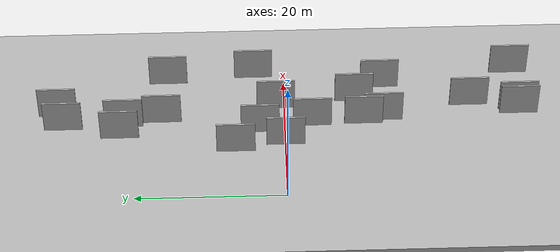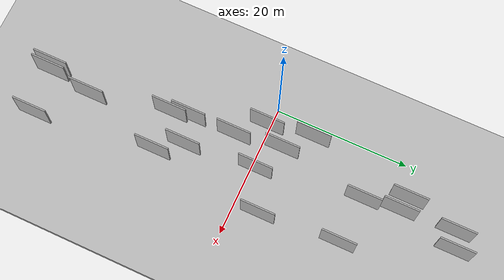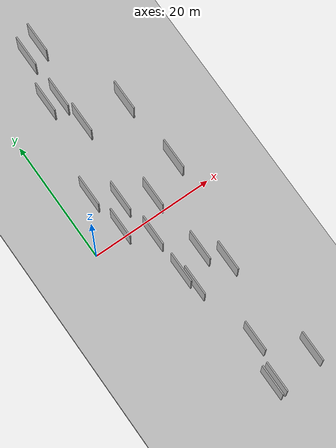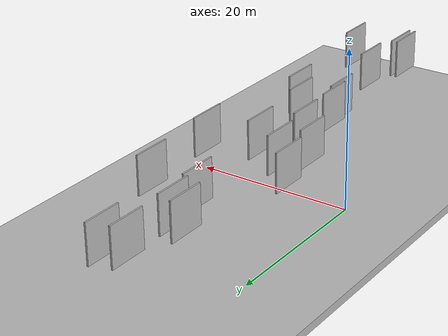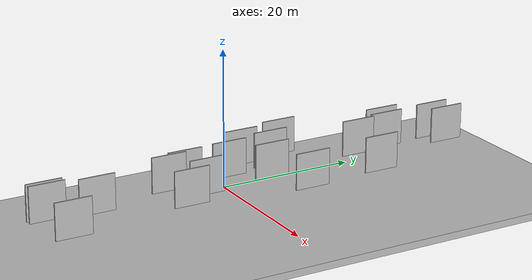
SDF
<?xml version="1.0" encoding="utf-8"?>

<sdf version="1.6">

   <world name="default">

      <gui fullscreen="0">

         <camera name="user_camera">

            <pose>-15 0 4.57585 0 0 0</pose>

            <view_controller>orbit</view_controller>

         </camera>

      </gui>

      <scene>

         <sky>

           <clouds>

             <speed>12</speed>

           </clouds>

         </sky>

         <ambient>0.4 0.4 0.4 1</ambient>

         <background>0.7 0.7 0.7 1</background>

         <shadows>1</shadows>

      </scene>

      <gravity>0 0 -9.8066</gravity>

      <magnetic_field>6e-06 2.3e-05 -4.2e-05</magnetic_field>

      <physics default="0" name="default_physics" type="ode">

         <ode>

            <solver>

               <type>quick</type>

               <iters>10</iters>

               <sor>1.0</sor>

               <use_dynamic_moi_rescaling>0</use_dynamic_moi_rescaling>

            </solver>

            <constraints>

               <cfm>0</cfm>

               <erp>0.2</erp>

               <contact_max_correcting_vel>100</contact_max_correcting_vel>

               <contact_surface_layer>0.001</contact_surface_layer>

            </constraints>

         </ode>

         <max_step_size>0.004</max_step_size>

         <real_time_factor>1</real_time_factor>

         <real_time_update_rate>250</real_time_update_rate>

      </physics>

      <light name="sun" type="directional">

         <cast_shadows>1</cast_shadows>

         <pose>0 0 10 0 0 0</pose>

         <diffuse>0.8 0.8 0.8 1</diffuse>

         <specular>0.2 0.2 0.2 1</specular>

         <attenuation>

            <range>1000</range>

            <constant>0.9</constant>

            <linear>0.01</linear>

            <quadratic>0.001</quadratic>

         </attenuation>

         <direction>-0.5 0.1 -0.9</direction>

      </light>

      <include>

         <name>ground_plane_1</name>

         <uri>model://HANNAS_ground_plane</uri>

         <pose>0 0 0  0 0 0</pose>

      </include>

      <include>

         <name>ground_plane_2</name>

         <uri>model://HANNAS_ground_plane</uri>

         <pose>100 0 0  0 0 0</pose>

      </include>

      <model name="HANNAS_wall_1">

         <static>1</static>

         <pose frame="">8.9552 16.1718 5.0 0.000000 0.000000 1.570796</pose>

         <link name="link">

            <pose frame="">0 0 2.50 0 0 0</pose>

            <collision name="collision">

               <geometry>

                  <box>

                     <size>5.00 0.2 5.00</size>

                  </box>

               </geometry>

               <max_contacts>10</max_contacts>

               <surface>

                  <contact>

                     <ode/>

                  </contact>

                  <bounce/>

                  <friction>

                     <torsional>

                        <ode/>

                     </torsional>

                     <ode/>

                  </friction>

               </surface>

            </collision>

            <visual name="visual">

               <cast_shadows>0</cast_shadows>

               <geometry>

                  <box>

                     <size>5.00 0.2 5.00</size>

                  </box>

               </geometry>

               <material>

                  <script>

                     <uri>model://HANNAS_wall/materials/scripts</uri>

                     <uri>model://HANNAS_wall/materials/textures</uri>

                     <name>vrc/HANNAS_wall</name>

                  </script>

               </material>

            </visual>

            <self_collide>0</self_collide>

            <enable_wind>0</enable_wind>

            <kinematic>0</kinematic>

         </link>

      </model>

      <model name="HANNAS_wall_2">

         <static>1</static>

         <pose frame="">16.6825 4.1266 5.0 0.000000 0.000000 1.570796</pose>

         <link name="link">

            <pose frame="">0 0 2.50 0 0 0</pose>

            <collision name="collision">

               <geometry>

                  <box>

                     <size>5.00 0.2 5.00</size>

                  </box>

               </geometry>

               <max_contacts>10</max_contacts>

               <surface>

                  <contact>

                     <ode/>

                  </contact>

                  <bounce/>

                  <friction>

                     <torsional>

                        <ode/>

                     </torsional>

                     <ode/>

                  </friction>

               </surface>

            </collision>

            <visual name="visual">

               <cast_shadows>0</cast_shadows>

               <geometry>

                  <box>

                     <size>5.00 0.2 5.00</size>

                  </box>

               </geometry>

               <material>

                  <script>

                     <uri>model://HANNAS_wall/materials/scripts</uri>

                     <uri>model://HANNAS_wall/materials/textures</uri>

                     <name>vrc/HANNAS_wall</name>

                  </script>

               </material>

            </visual>

            <self_collide>0</self_collide>

            <enable_wind>0</enable_wind>

            <kinematic>0</kinematic>

         </link>

      </model>

      <model name="HANNAS_wall_3">

         <static>1</static>

         <pose frame="">3.6133 6.5719 5.0 0.000000 0.000000 1.570796</pose>

         <link name="link">

            <pose frame="">0 0 2.50 0 0 0</pose>

            <collision name="collision">

               <geometry>

                  <box>

                     <size>5.00 0.2 5.00</size>

                  </box>

               </geometry>

               <max_contacts>10</max_contacts>

               <surface>

                  <contact>

                     <ode/>

                  </contact>

                  <bounce/>

                  <friction>

                     <torsional>

                        <ode/>

                     </torsional>

                     <ode/>

                  </friction>

               </surface>

            </collision>

            <visual name="visual">

               <cast_shadows>0</cast_shadows>

               <geometry>

                  <box>

                     <size>5.00 0.2 5.00</size>

                  </box>

               </geometry>

               <material>

                  <script>

                     <uri>model://HANNAS_wall/materials/scripts</uri>

                     <uri>model://HANNAS_wall/materials/textures</uri>

                     <name>vrc/HANNAS_wall</name>

                  </script>

               </material>

            </visual>

            <self_collide>0</self_collide>

            <enable_wind>0</enable_wind>

            <kinematic>0</kinematic>

         </link>

      </model>

      <model name="HANNAS_wall_4">

         <static>1</static>

         <pose frame="">6.8973 3.3755 5.0 0.000000 0.000000 1.570796</pose>

         <link name="link">

            <pose frame="">0 0 2.50 0 0 0</pose>

            <collision name="collision">

               <geometry>

                  <box>

                     <size>5.00 0.2 5.00</size>

                  </box>

               </geometry>

               <max_contacts>10</max_contacts>

               <surface>

                  <contact>

                     <ode/>

                  </contact>

                  <bounce/>

                  <friction>

                     <torsional>

                        <ode/>

                     </torsional>

                     <ode/>

                  </friction>

               </surface>

            </collision>

            <visual name="visual">

               <cast_shadows>0</cast_shadows>

               <geometry>

                  <box>

                     <size>5.00 0.2 5.00</size>

                  </box>

               </geometry>

               <material>

                  <script>

                     <uri>model://HANNAS_wall/materials/scripts</uri>

                     <uri>model://HANNAS_wall/materials/textures</uri>

                     <name>vrc/HANNAS_wall</name>

                  </script>

               </material>

            </visual>

            <self_collide>0</self_collide>

            <enable_wind>0</enable_wind>

            <kinematic>0</kinematic>

         </link>

      </model>

      <model name="HANNAS_wall_5">

         <static>1</static>

         <pose frame="">9.2065 -30.6236 5.0 0.000000 0.000000 1.570796</pose>

         <link name="link">

            <pose frame="">0 0 2.50 0 0 0</pose>

            <collision name="collision">

               <geometry>

                  <box>

                     <size>5.00 0.2 5.00</size>

                  </box>

               </geometry>

               <max_contacts>10</max_contacts>

               <surface>

                  <contact>

                     <ode/>

                  </contact>

                  <bounce/>

                  <friction>

                     <torsional>

                        <ode/>

                     </torsional>

                     <ode/>

                  </friction>

               </surface>

            </collision>

            <visual name="visual">

               <cast_shadows>0</cast_shadows>

               <geometry>

                  <box>

                     <size>5.00 0.2 5.00</size>

                  </box>

               </geometry>

               <material>

                  <script>

                     <uri>model://HANNAS_wall/materials/scripts</uri>

                     <uri>model://HANNAS_wall/materials/textures</uri>

                     <name>vrc/HANNAS_wall</name>

                  </script>

               </material>

            </visual>

            <self_collide>0</self_collide>

            <enable_wind>0</enable_wind>

            <kinematic>0</kinematic>

         </link>

      </model>

      <model name="HANNAS_wall_6">

         <static>1</static>

         <pose frame="">8.3192 21.1866 5.0 0.000000 0.000000 1.570796</pose>

         <link name="link">

            <pose frame="">0 0 2.50 0 0 0</pose>

            <collision name="collision">

               <geometry>

                  <box>

                     <size>5.00 0.2 5.00</size>

                  </box>

               </geometry>

               <max_contacts>10</max_contacts>

               <surface>

                  <contact>

                     <ode/>

                  </contact>

                  <bounce/>

                  <friction>

                     <torsional>

                        <ode/>

                     </torsional>

                     <ode/>

                  </friction>

               </surface>

            </collision>

            <visual name="visual">

               <cast_shadows>0</cast_shadows>

               <geometry>

                  <box>

                     <size>5.00 0.2 5.00</size>

                  </box>

               </geometry>

               <material>

                  <script>

                     <uri>model://HANNAS_wall/materials/scripts</uri>

                     <uri>model://HANNAS_wall/materials/textures</uri>

                     <name>vrc/HANNAS_wall</name>

                  </script>

               </material>

            </visual>

            <self_collide>0</self_collide>

            <enable_wind>0</enable_wind>

            <kinematic>0</kinematic>

         </link>

      </model>

      <model name="HANNAS_wall_7">

         <static>1</static>

         <pose frame="">15.8572 15.4159 5.0 0.000000 0.000000 1.570796</pose>

         <link name="link">

            <pose frame="">0 0 2.50 0 0 0</pose>

            <collision name="collision">

               <geometry>

                  <box>

                     <size>5.00 0.2 5.00</size>

                  </box>

               </geometry>

               <max_contacts>10</max_contacts>

               <surface>

                  <contact>

                     <ode/>

                  </contact>

                  <bounce/>

                  <friction>

                     <torsional>

                        <ode/>

                     </torsional>

                     <ode/>

                  </friction>

               </surface>

            </collision>

            <visual name="visual">

               <cast_shadows>0</cast_shadows>

               <geometry>

                  <box>

                     <size>5.00 0.2 5.00</size>

                  </box>

               </geometry>

               <material>

                  <script>

                     <uri>model://HANNAS_wall/materials/scripts</uri>

                     <uri>model://HANNAS_wall/materials/textures</uri>

                     <name>vrc/HANNAS_wall</name>

                  </script>

               </material>

            </visual>

            <self_collide>0</self_collide>

            <enable_wind>0</enable_wind>

            <kinematic>0</kinematic>

         </link>

      </model>

      <model name="HANNAS_wall_8">

         <static>1</static>

         <pose frame="">16.5887 -29.9068 5.0 0.000000 0.000000 1.570796</pose>

         <link name="link">

            <pose frame="">0 0 2.50 0 0 0</pose>

            <collision name="collision">

               <geometry>

                  <box>

                     <size>5.00 0.2 5.00</size>

                  </box>

               </geometry>

               <max_contacts>10</max_contacts>

               <surface>

                  <contact>

                     <ode/>

                  </contact>

                  <bounce/>

                  <friction>

                     <torsional>

                        <ode/>

                     </torsional>

                     <ode/>

                  </friction>

               </surface>

            </collision>

            <visual name="visual">

               <cast_shadows>0</cast_shadows>

               <geometry>

                  <box>

                     <size>5.00 0.2 5.00</size>

                  </box>

               </geometry>

               <material>

                  <script>

                     <uri>model://HANNAS_wall/materials/scripts</uri>

                     <uri>model://HANNAS_wall/materials/textures</uri>

                     <name>vrc/HANNAS_wall</name>

                  </script>

               </material>

            </visual>

            <self_collide>0</self_collide>

            <enable_wind>0</enable_wind>

            <kinematic>0</kinematic>

         </link>

      </model>

      <model name="HANNAS_wall_9">

         <static>1</static>

         <pose frame="">12.0498 -9.0520 5.0 0.000000 0.000000 1.570796</pose>

         <link name="link">

            <pose frame="">0 0 2.50 0 0 0</pose>

            <collision name="collision">

               <geometry>

                  <box>

                     <size>5.00 0.2 5.00</size>

                  </box>

               </geometry>

               <max_contacts>10</max_contacts>

               <surface>

                  <contact>

                     <ode/>

                  </contact>

                  <bounce/>

                  <friction>

                     <torsional>

                        <ode/>

                     </torsional>

                     <ode/>

                  </friction>

               </surface>

            </collision>

            <visual name="visual">

               <cast_shadows>0</cast_shadows>

               <geometry>

                  <box>

                     <size>5.00 0.2 5.00</size>

                  </box>

               </geometry>

               <material>

                  <script>

                     <uri>model://HANNAS_wall/materials/scripts</uri>

                     <uri>model://HANNAS_wall/materials/textures</uri>

                     <name>vrc/HANNAS_wall</name>

                  </script>

               </material>

            </visual>

            <self_collide>0</self_collide>

            <enable_wind>0</enable_wind>

            <kinematic>0</kinematic>

         </link>

      </model>

      <model name="HANNAS_wall_10">

         <static>1</static>

         <pose frame="">10.8728 -24.1320 5.0 0.000000 0.000000 1.570796</pose>

         <link name="link">

            <pose frame="">0 0 2.50 0 0 0</pose>

            <collision name="collision">

               <geometry>

                  <box>

                     <size>5.00 0.2 5.00</size>

                  </box>

               </geometry>

               <max_contacts>10</max_contacts>

               <surface>

                  <contact>

                     <ode/>

                  </contact>

                  <bounce/>

                  <friction>

                     <torsional>

                        <ode/>

                     </torsional>

                     <ode/>

                  </friction>

               </surface>

            </collision>

            <visual name="visual">

               <cast_shadows>0</cast_shadows>

               <geometry>

                  <box>

                     <size>5.00 0.2 5.00</size>

                  </box>

               </geometry>

               <material>

                  <script>

                     <uri>model://HANNAS_wall/materials/scripts</uri>

                     <uri>model://HANNAS_wall/materials/textures</uri>

                     <name>vrc/HANNAS_wall</name>

                  </script>

               </material>

            </visual>

            <self_collide>0</self_collide>

            <enable_wind>0</enable_wind>

            <kinematic>0</kinematic>

         </link>

      </model>

      <model name="HANNAS_wall_11">

         <static>1</static>

         <pose frame="">8.5150 -12.7806 5.0 0.000000 0.000000 1.570796</pose>

         <link name="link">

            <pose frame="">0 0 2.50 0 0 0</pose>

            <collision name="collision">

               <geometry>

                  <box>

                     <size>5.00 0.2 5.00</size>

                  </box>

               </geometry>

               <max_contacts>10</max_contacts>

               <surface>

                  <contact>

                     <ode/>

                  </contact>

                  <bounce/>

                  <friction>

                     <torsional>

                        <ode/>

                     </torsional>

                     <ode/>

                  </friction>

               </surface>

            </collision>

            <visual name="visual">

               <cast_shadows>0</cast_shadows>

               <geometry>

                  <box>

                     <size>5.00 0.2 5.00</size>

                  </box>

               </geometry>

               <material>

                  <script>

                     <uri>model://HANNAS_wall/materials/scripts</uri>

                     <uri>model://HANNAS_wall/materials/textures</uri>

                     <name>vrc/HANNAS_wall</name>

                  </script>

               </material>

            </visual>

            <self_collide>0</self_collide>

            <enable_wind>0</enable_wind>

            <kinematic>0</kinematic>

         </link>

      </model>

      <model name="HANNAS_wall_12">

         <static>1</static>

         <pose frame="">7.9907 -10.1568 5.0 0.000000 0.000000 1.570796</pose>

         <link name="link">

            <pose frame="">0 0 2.50 0 0 0</pose>

            <collision name="collision">

               <geometry>

                  <box>

                     <size>5.00 0.2 5.00</size>

                  </box>

               </geometry>

               <max_contacts>10</max_contacts>

               <surface>

                  <contact>

                     <ode/>

                  </contact>

                  <bounce/>

                  <friction>

                     <torsional>

                        <ode/>

                     </torsional>

                     <ode/>

                  </friction>

               </surface>

            </collision>

            <visual name="visual">

               <cast_shadows>0</cast_shadows>

               <geometry>

                  <box>

                     <size>5.00 0.2 5.00</size>

                  </box>

               </geometry>

               <material>

                  <script>

                     <uri>model://HANNAS_wall/materials/scripts</uri>

                     <uri>model://HANNAS_wall/materials/textures</uri>

                     <name>vrc/HANNAS_wall</name>

                  </script>

               </material>

            </visual>

            <self_collide>0</self_collide>

            <enable_wind>0</enable_wind>

            <kinematic>0</kinematic>

         </link>

      </model>

      <model name="HANNAS_wall_13">

         <static>1</static>

         <pose frame="">4.6151 0.0968 5.0 0.000000 0.000000 1.570796</pose>

         <link name="link">

            <pose frame="">0 0 2.50 0 0 0</pose>

            <collision name="collision">

               <geometry>

                  <box>

                     <size>5.00 0.2 5.00</size>

                  </box>

               </geometry>

               <max_contacts>10</max_contacts>

               <surface>

                  <contact>

                     <ode/>

                  </contact>

                  <bounce/>

                  <friction>

                     <torsional>

                        <ode/>

                     </torsional>

                     <ode/>

                  </friction>

               </surface>

            </collision>

            <visual name="visual">

               <cast_shadows>0</cast_shadows>

               <geometry>

                  <box>

                     <size>5.00 0.2 5.00</size>

                  </box>

               </geometry>

               <material>

                  <script>

                     <uri>model://HANNAS_wall/materials/scripts</uri>

                     <uri>model://HANNAS_wall/materials/textures</uri>

                     <name>vrc/HANNAS_wall</name>

                  </script>

               </material>

            </visual>

            <self_collide>0</self_collide>

            <enable_wind>0</enable_wind>

            <kinematic>0</kinematic>

         </link>

      </model>

      <model name="HANNAS_wall_14">

         <static>1</static>

         <pose frame="">14.4368 -12.5194 5.0 0.000000 0.000000 1.570796</pose>

         <link name="link">

            <pose frame="">0 0 2.50 0 0 0</pose>

            <collision name="collision">

               <geometry>

                  <box>

                     <size>5.00 0.2 5.00</size>

                  </box>

               </geometry>

               <max_contacts>10</max_contacts>

               <surface>

                  <contact>

                     <ode/>

                  </contact>

                  <bounce/>

                  <friction>

                     <torsional>

                        <ode/>

                     </torsional>

                     <ode/>

                  </friction>

               </surface>

            </collision>

            <visual name="visual">

               <cast_shadows>0</cast_shadows>

               <geometry>

                  <box>

                     <size>5.00 0.2 5.00</size>

                  </box>

               </geometry>

               <material>

                  <script>

                     <uri>model://HANNAS_wall/materials/scripts</uri>

                     <uri>model://HANNAS_wall/materials/textures</uri>

                     <name>vrc/HANNAS_wall</name>

                  </script>

               </material>

            </visual>

            <self_collide>0</self_collide>

            <enable_wind>0</enable_wind>

            <kinematic>0</kinematic>

         </link>

      </model>

      <model name="HANNAS_wall_15">

         <static>1</static>

         <pose frame="">9.9795 -30.5581 5.0 0.000000 0.000000 1.570796</pose>

         <link name="link">

            <pose frame="">0 0 2.50 0 0 0</pose>

            <collision name="collision">

               <geometry>

                  <box>

                     <size>5.00 0.2 5.00</size>

                  </box>

               </geometry>

               <max_contacts>10</max_contacts>

               <surface>

                  <contact>

                     <ode/>

                  </contact>

                  <bounce/>

                  <friction>

                     <torsional>

                        <ode/>

                     </torsional>

                     <ode/>

                  </friction>

               </surface>

            </collision>

            <visual name="visual">

               <cast_shadows>0</cast_shadows>

               <geometry>

                  <box>

                     <size>5.00 0.2 5.00</size>

                  </box>

               </geometry>

               <material>

                  <script>

                     <uri>model://HANNAS_wall/materials/scripts</uri>

                     <uri>model://HANNAS_wall/materials/textures</uri>

                     <name>vrc/HANNAS_wall</name>

                  </script>

               </material>

            </visual>

            <self_collide>0</self_collide>

            <enable_wind>0</enable_wind>

            <kinematic>0</kinematic>

         </link>

      </model>

      <model name="HANNAS_wall_16">

         <static>1</static>

         <pose frame="">11.0572 1.2371 5.0 0.000000 0.000000 1.570796</pose>

         <link name="link">

            <pose frame="">0 0 2.50 0 0 0</pose>

            <collision name="collision">

               <geometry>

                  <box>

                     <size>5.00 0.2 5.00</size>

                  </box>

               </geometry>

               <max_contacts>10</max_contacts>

               <surface>

                  <contact>

                     <ode/>

                  </contact>

                  <bounce/>

                  <friction>

                     <torsional>

                        <ode/>

                     </torsional>

                     <ode/>

                  </friction>

               </surface>

            </collision>

            <visual name="visual">

               <cast_shadows>0</cast_shadows>

               <geometry>

                  <box>

                     <size>5.00 0.2 5.00</size>

                  </box>

               </geometry>

               <material>

                  <script>

                     <uri>model://HANNAS_wall/materials/scripts</uri>

                     <uri>model://HANNAS_wall/materials/textures</uri>

                     <name>vrc/HANNAS_wall</name>

                  </script>

               </material>

            </visual>

            <self_collide>0</self_collide>

            <enable_wind>0</enable_wind>

            <kinematic>0</kinematic>

         </link>

      </model>

      <model name="HANNAS_wall_17">

         <static>1</static>

         <pose frame="">7.9739 29.0679 5.0 0.000000 0.000000 1.570796</pose>

         <link name="link">

            <pose frame="">0 0 2.50 0 0 0</pose>

            <collision name="collision">

               <geometry>

                  <box>

                     <size>5.00 0.2 5.00</size>

                  </box>

               </geometry>

               <max_contacts>10</max_contacts>

               <surface>

                  <contact>

                     <ode/>

                  </contact>

                  <bounce/>

                  <friction>

                     <torsional>

                        <ode/>

                     </torsional>

                     <ode/>

                  </friction>

               </surface>

            </collision>

            <visual name="visual">

               <cast_shadows>0</cast_shadows>

               <geometry>

                  <box>

                     <size>5.00 0.2 5.00</size>

                  </box>

               </geometry>

               <material>

                  <script>

                     <uri>model://HANNAS_wall/materials/scripts</uri>

                     <uri>model://HANNAS_wall/materials/textures</uri>

                     <name>vrc/HANNAS_wall</name>

                  </script>

               </material>

            </visual>

            <self_collide>0</self_collide>

            <enable_wind>0</enable_wind>

            <kinematic>0</kinematic>

         </link>

      </model>

      <model name="HANNAS_wall_18">

         <static>1</static>

         <pose frame="">7.8162 -3.4495 5.0 0.000000 0.000000 1.570796</pose>

         <link name="link">

            <pose frame="">0 0 2.50 0 0 0</pose>

            <collision name="collision">

               <geometry>

                  <box>

                     <size>5.00 0.2 5.00</size>

                  </box>

               </geometry>

               <max_contacts>10</max_contacts>

               <surface>

                  <contact>

                     <ode/>

                  </contact>

                  <bounce/>

                  <friction>

                     <torsional>

                        <ode/>

                     </torsional>

                     <ode/>

                  </friction>

               </surface>

            </collision>

            <visual name="visual">

               <cast_shadows>0</cast_shadows>

               <geometry>

                  <box>

                     <size>5.00 0.2 5.00</size>

                  </box>

               </geometry>

               <material>

                  <script>

                     <uri>model://HANNAS_wall/materials/scripts</uri>

                     <uri>model://HANNAS_wall/materials/textures</uri>

                     <name>vrc/HANNAS_wall</name>

                  </script>

               </material>

            </visual>

            <self_collide>0</self_collide>

            <enable_wind>0</enable_wind>

            <kinematic>0</kinematic>

         </link>

      </model>

      <model name="HANNAS_wall_19">

         <static>1</static>

         <pose frame="">6.3332 21.6930 5.0 0.000000 0.000000 1.570796</pose>

         <link name="link">

            <pose frame="">0 0 2.50 0 0 0</pose>

            <collision name="collision">

               <geometry>

                  <box>

                     <size>5.00 0.2 5.00</size>

                  </box>

               </geometry>

               <max_contacts>10</max_contacts>

               <surface>

                  <contact>

                     <ode/>

                  </contact>

                  <bounce/>

                  <friction>

                     <torsional>

                        <ode/>

                     </torsional>

                     <ode/>

                  </friction>

               </surface>

            </collision>

            <visual name="visual">

               <cast_shadows>0</cast_shadows>

               <geometry>

                  <box>

                     <size>5.00 0.2 5.00</size>

                  </box>

               </geometry>

               <material>

                  <script>

                     <uri>model://HANNAS_wall/materials/scripts</uri>

                     <uri>model://HANNAS_wall/materials/textures</uri>

                     <name>vrc/HANNAS_wall</name>

                  </script>

               </material>

            </visual>

            <self_collide>0</self_collide>

            <enable_wind>0</enable_wind>

            <kinematic>0</kinematic>

         </link>

      </model>

      <model name="HANNAS_wall_20">

         <static>1</static>

         <pose frame="">10.4356 29.8707 5.0 0.000000 0.000000 1.570796</pose>

         <link name="link">

            <pose frame="">0 0 2.50 0 0 0</pose>

            <collision name="collision">

               <geometry>

                  <box>

                     <size>5.00 0.2 5.00</size>

                  </box>

               </geometry>

               <max_contacts>10</max_contacts>

               <surface>

                  <contact>

                     <ode/>

                  </contact>

                  <bounce/>

                  <friction>

                     <torsional>

                        <ode/>

                     </torsional>

                     <ode/>

                  </friction>

               </surface>

            </collision>

            <visual name="visual">

               <cast_shadows>0</cast_shadows>

               <geometry>

                  <box>

                     <size>5.00 0.2 5.00</size>

                  </box>

               </geometry>

               <material>

                  <script>

                     <uri>model://HANNAS_wall/materials/scripts</uri>

                     <uri>model://HANNAS_wall/materials/textures</uri>

                     <name>vrc/HANNAS_wall</name>

                  </script>

               </material>

            </visual>

            <self_collide>0</self_collide>

            <enable_wind>0</enable_wind>

            <kinematic>0</kinematic>

         </link>

      </model>

   </world>

</sdf>

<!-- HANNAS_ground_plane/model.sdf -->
<sdf version="1.4">
<model name="HANNAS_ground_plane">
  <static>true</static>
    <link name="link">
      <collision name="collision">
        <geometry>
          <plane>
            <normal>0 0 1</normal>
            <size>1000 1000</size>
          </plane>
        </geometry>
        <surface>
          <friction>
            <ode>
              <mu>100</mu>
              <mu2>50</mu2>
            </ode>
          </friction>
        </surface>
      </collision>
      <visual name="visual">
        <cast_shadows>false</cast_shadows>
        <geometry>
          <plane>
            <normal>0 0 1</normal>
            <size>1000 1000</size>
          </plane>
        </geometry>
        <material>
          <script>
            <uri>model://HANNAS_ground_plane/materials/scripts/HANNAS_ground_plane.material</uri>
	    <uri>model://HANNAS_ground_plane/materials/textures</uri>
            <name>HANNASGroundPlane/Image</name>
          </script>
        </material>
      </visual>
    </link>
  </model>
</sdf>
